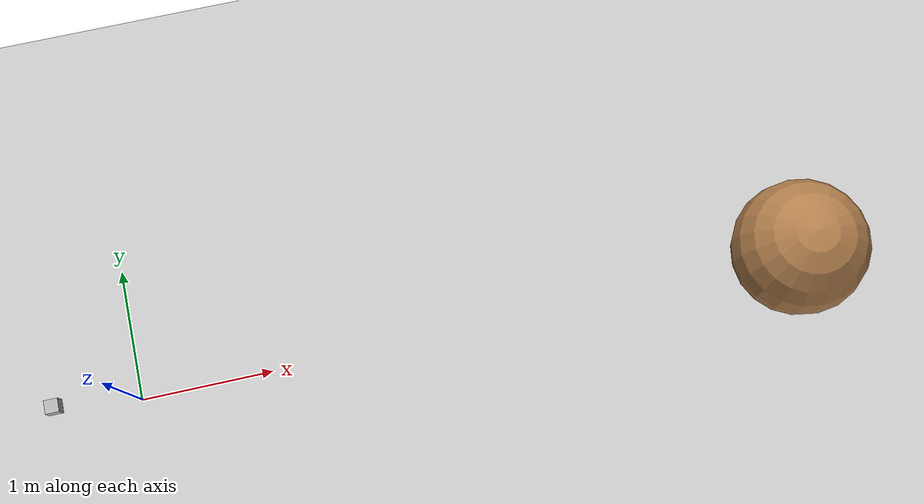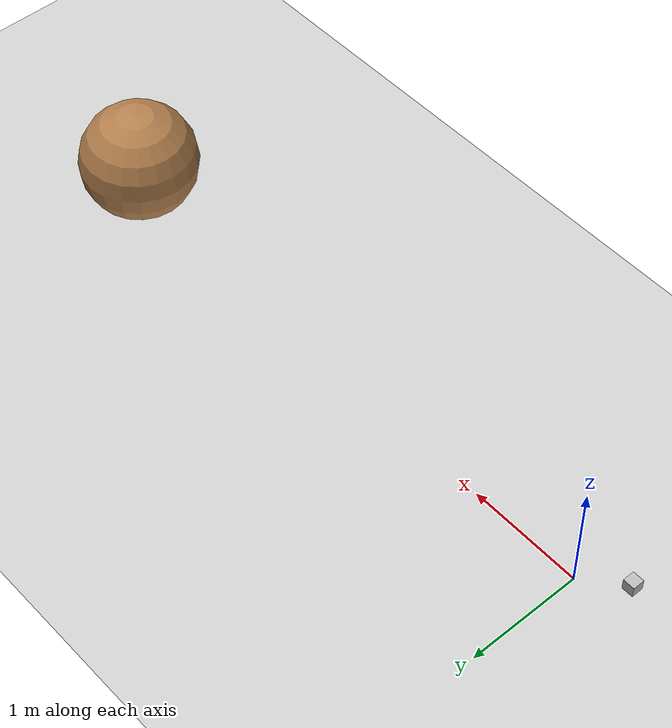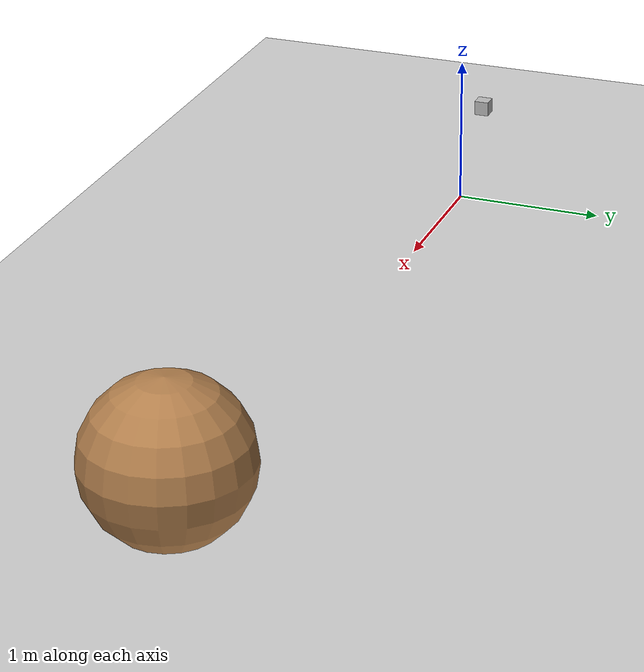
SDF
<?xml version="1.0" ?>
<sdf version="1.5">
  <world name="default">
    <!-- A ground plane -->
    <include>
      <uri>model://ground_plane</uri>
    </include>
    <!-- A global light source -->
    <include>
      <uri>model://sun</uri>
    </include>
    <model name="left_wall">
      <static>true</static>

    <!-- transform for sphere test -->
    <pose> 5.0 0.0 0.5 0.0 0.0 0.0 </pose>

      <!-- -70-degree tilt -->

      <!-- 30-degree tilt -->

      <!-- 44-degree tilt -->

      <!-- 44.99-degree tilt -->

      <!-- 45.0-degree tilt -->

      <!-- 46.0-degree tilt -->

      <!-- 50.0-degree tilt -->

      <!-- 70.0-degree tilt -->

      <!-- 88.0-degree tilt -->

      <link name="link">
        <collision name="collision">
          <geometry>
            <box>
              <size>5 0.2 1.0</size>
            </box>
          </geometry>
        </collision>
        <visual name="visual">
          <geometry>

            <sphere>
              <radius>0.5</radius>
            </sphere>

          </geometry>

          <material>
            <script>
              <uri>file://media/materials/scripts/gazebo.material</uri>
              <name>Gazebo/Wood</name>
            </script>
          </material>

        </visual>
      </link>
    </model>
    <model name="camera">

      <pose> -0.5  0  0.5   0  0  0 </pose>

      <static>true</static>
      <link name="link">
        <inertial>
          <mass>0.1</mass>
          <inertia>
            <ixx>0.000166667</ixx>
            <iyy>0.000166667</iyy>
            <izz>0.000166667</izz>
          </inertia>
        </inertial>
        <collision name="collision">
          <geometry>
            <box>
              <size>0.1 0.1 0.1</size>
            </box>
          </geometry>
        </collision>
        <visual name="visual">
          <geometry>
            <box>
              <size>0.1 0.1 0.1</size>
            </box>
          </geometry>
        </visual>
        <sensor name="camera" type="camera">
          <camera>
            <horizontal_fov>1.047</horizontal_fov>
            <image>
              <width>320</width>
              <height>320</height>
            </image>
            <clip>
              <near>0.1</near>
              <far>100</far>
            </clip>

            <noise>
              <type>gaussian</type>
              <mean>0.0</mean>
              <stddev>0.02</stddev>
            </noise>

          </camera>
          <always_on>1</always_on>
          <update_rate>30</update_rate>
          <visualize>true</visualize>

          <plugin name="glinting_camera" filename="libCameraGlintPlugin.so">

            <sunlight>0.0 0.0 -1.0</sunlight>

            <!-- Approximately 10-degrees -->
            <sun_angular_diameter>0.1745</sun_angular_diameter>

          </plugin>

        </sensor>
      </link>
    </model>
  </world>
</sdf>
